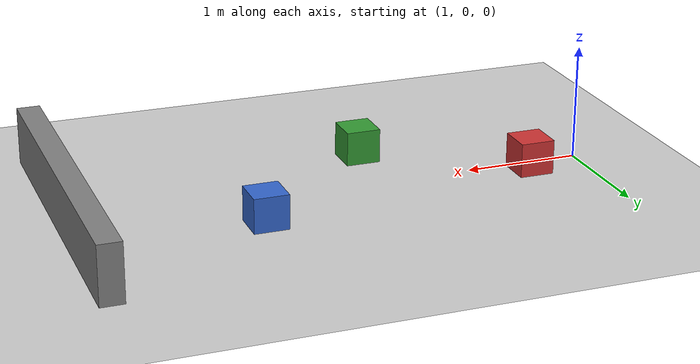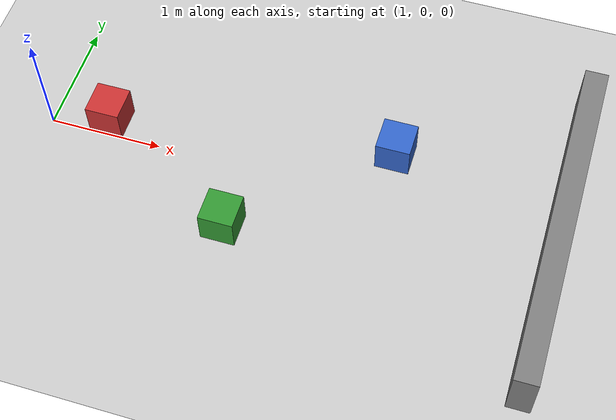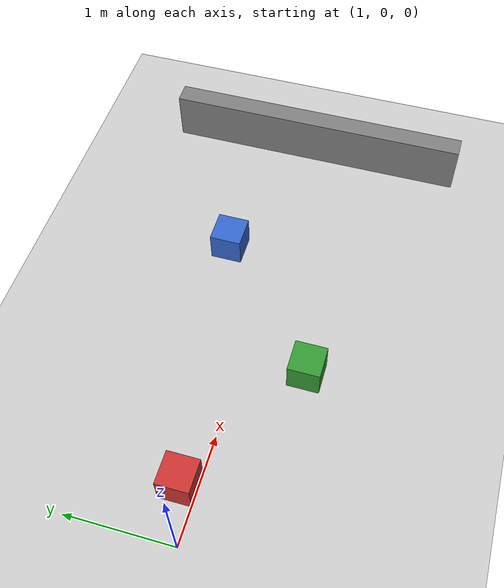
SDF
<?xml version="1.0"?>
<!-- A simple obstacle course to see the avoidance logic. The boxes (0.3m tall) are
     placed so they are clearly visible at the lidar height (z≈0.18m). -->
<sdf version="1.6">
  <world name="default">

    <include><uri>model://ground_plane</uri></include>
    <include><uri>model://sun</uri></include>

    <!-- front, slightly right -->
    <model name="obstacle_1">
      <static>true</static>
      <pose>1.5 0.15 0.15 0 0 0</pose>
      <link name="link">
        <collision name="c"><geometry><box><size>0.3 0.3 0.3</size></box></geometry></collision>
        <visual name="v">
          <geometry><box><size>0.3 0.3 0.3</size></box></geometry>
          <material><ambient>0.8 0.2 0.2 1</ambient><diffuse>0.8 0.2 0.2 1</diffuse></material>
        </visual>
      </link>
    </model>

    <!-- left -->
    <model name="obstacle_2">
      <static>true</static>
      <pose>2.8 -0.6 0.15 0 0 0</pose>
      <link name="link">
        <collision name="c"><geometry><box><size>0.3 0.3 0.3</size></box></geometry></collision>
        <visual name="v">
          <geometry><box><size>0.3 0.3 0.3</size></box></geometry>
          <material><ambient>0.2 0.6 0.2 1</ambient><diffuse>0.2 0.6 0.2 1</diffuse></material>
        </visual>
      </link>
    </model>

    <!-- right -->
    <model name="obstacle_3">
      <static>true</static>
      <pose>4.0 0.5 0.15 0 0 0</pose>
      <link name="link">
        <collision name="c"><geometry><box><size>0.3 0.3 0.3</size></box></geometry></collision>
        <visual name="v">
          <geometry><box><size>0.3 0.3 0.3</size></box></geometry>
          <material><ambient>0.2 0.4 0.8 1</ambient><diffuse>0.2 0.4 0.8 1</diffuse></material>
        </visual>
      </link>
    </model>

    <!-- front dead-end wall (to verify emergency reverse + RECOVER triggering) -->
    <model name="wall_front">
      <static>true</static>
      <pose>5.5 0 0.25 0 0 0</pose>
      <link name="link">
        <collision name="c"><geometry><box><size>0.2 3.0 0.5</size></box></geometry></collision>
        <visual name="v">
          <geometry><box><size>0.2 3.0 0.5</size></box></geometry>
          <material><ambient>0.5 0.5 0.5 1</ambient><diffuse>0.5 0.5 0.5 1</diffuse></material>
        </visual>
      </link>
    </model>

  </world>
</sdf>
